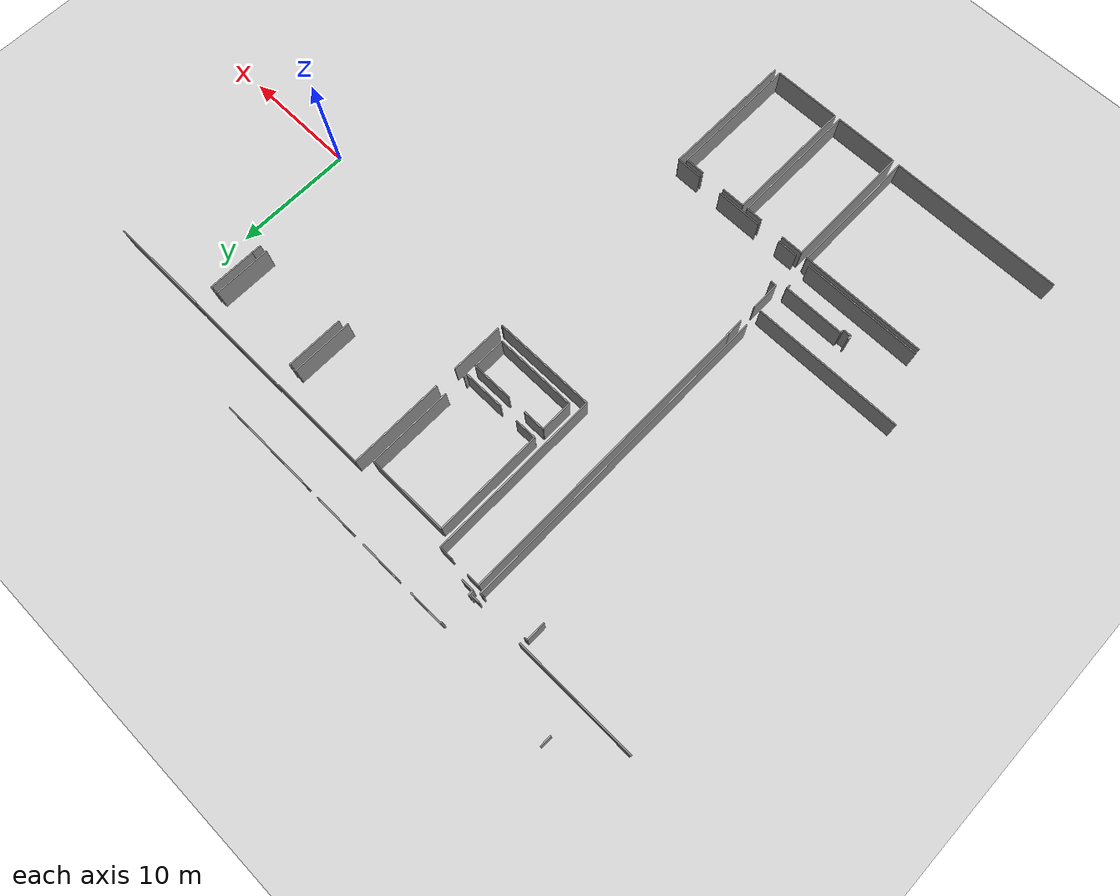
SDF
<sdf version="1.6">
 <world name="default">
  <model name="ground_plane">
   <static>1</static>
   <link name="link">
    <collision name="collision">
     <geometry><plane><normal>0 0 1</normal><size>100 100</size></plane></geometry>
     <surface><friction><ode><mu>100</mu><mu2>50</mu2></ode></friction></surface>
    </collision>
    <visual name="visual">
     <cast_shadows>0</cast_shadows>
     <geometry><plane><normal>0 0 1</normal><size>100 100</size></plane></geometry>
     <material>
      <script><uri>file://media/materials/scripts/gazebo.material</uri><name>Gazebo/Grey</name></script>
     </material>
    </visual>
   </link>
  </model>
  <model name="50010535_PLAN1">
   <static>1</static>
   <link name="Wall_223">
    <collision name="Wall_223_Collision">
     <geometry><box><size>1.60530612504 0.1 2.5</size></box></geometry>
     <pose>0.802653062521 0 1.25 0 0 0</pose>
    </collision>
    <visual name="Wall_223_Visual">
     <pose>0.802653062521 0 1.25 0 0 0</pose>
     <geometry><box><size>1.60530612504 0.1 2.5</size></box></geometry>
     <material>
      <script><uri>file://media/materials/scripts/gazebo.material</uri><name>Gazebo/Grey</name></script>
      <ambient>1 1 1 1</ambient>
     </material>
    </visual>
    <pose>64.3309212658 -14.4340323882 0 0 0 1.57079632679</pose>
   </link>
   <link name="Wall_224">
    <collision name="Wall_224_Collision">
     <geometry><box><size>0.271659371168 0.1 2.5</size></box></geometry>
     <pose>0.135829685584 0 1.25 0 0 0</pose>
    </collision>
    <visual name="Wall_224_Visual">
     <pose>0.135829685584 0 1.25 0 0 0</pose>
     <geometry><box><size>0.271659371168 0.1 2.5</size></box></geometry>
     <material>
      <script><uri>file://media/materials/scripts/gazebo.material</uri><name>Gazebo/Grey</name></script>
      <ambient>1 1 1 1</ambient>
     </material>
    </visual>
    <pose>64.3309212658 -12.8287262632 0 0 0 0.0</pose>
   </link>
   <link name="Wall_225">
    <collision name="Wall_225_Collision">
     <geometry><box><size>0.276233616894 0.1 2.5</size></box></geometry>
     <pose>0.138116808447 0 1.25 0 0 0</pose>
    </collision>
    <visual name="Wall_225_Visual">
     <pose>0.138116808447 0 1.25 0 0 0</pose>
     <geometry><box><size>0.276233616894 0.1 2.5</size></box></geometry>
     <material>
      <script><uri>file://media/materials/scripts/gazebo.material</uri><name>Gazebo/Grey</name></script>
      <ambient>1 1 1 1</ambient>
     </material>
    </visual>
    <pose>68.5725176776 -12.8287262632 0 0 0 0.0</pose>
   </link>
   <link name="Wall_226">
    <collision name="Wall_226_Collision">
     <geometry><box><size>27.6581767819 0.1 2.5</size></box></geometry>
     <pose>13.8290883909 0 1.25 0 0 0</pose>
    </collision>
    <visual name="Wall_226_Visual">
     <pose>13.8290883909 0 1.25 0 0 0</pose>
     <geometry><box><size>27.6581767819 0.1 2.5</size></box></geometry>
     <material>
      <script><uri>file://media/materials/scripts/gazebo.material</uri><name>Gazebo/Grey</name></script>
      <ambient>1 1 1 1</ambient>
     </material>
    </visual>
    <pose>68.8487512944 -12.8287262632 0 0 0 -1.57079632679</pose>
   </link>
   <link name="Wall_227">
    <collision name="Wall_227_Collision">
     <geometry><box><size>12.9268241766 0.1 2.5</size></box></geometry>
     <pose>6.46341208831 0 1.25 0 0 0</pose>
    </collision>
    <visual name="Wall_227_Visual">
     <pose>6.46341208831 0 1.25 0 0 0</pose>
     <geometry><box><size>12.9268241766 0.1 2.5</size></box></geometry>
     <material>
      <script><uri>file://media/materials/scripts/gazebo.material</uri><name>Gazebo/Grey</name></script>
      <ambient>1 1 1 1</ambient>
     </material>
    </visual>
    <pose>68.8487512944 -42.0126681194 0 0 0 -3.14064903509</pose>
   </link>
   <link name="Wall_228">
    <collision name="Wall_228_Collision">
     <geometry><box><size>3.8599010184 0.1 2.5</size></box></geometry>
     <pose>1.9299505092 0 1.25 0 0 0</pose>
    </collision>
    <visual name="Wall_228_Visual">
     <pose>1.9299505092 0 1.25 0 0 0</pose>
     <geometry><box><size>3.8599010184 0.1 2.5</size></box></geometry>
     <material>
      <script><uri>file://media/materials/scripts/gazebo.material</uri><name>Gazebo/Grey</name></script>
      <ambient>1 1 1 1</ambient>
     </material>
    </visual>
    <pose>58.0603927498 -12.32911698 0 0 0 3.14159265359</pose>
   </link>
   <link name="Wall_231">
    <collision name="Wall_231_Collision">
     <geometry><box><size>0.977617961538 0.1 2.5</size></box></geometry>
     <pose>0.488808980769 0 1.25 0 0 0</pose>
    </collision>
    <visual name="Wall_231_Visual">
     <pose>0.488808980769 0 1.25 0 0 0</pose>
     <geometry><box><size>0.977617961538 0.1 2.5</size></box></geometry>
     <material>
      <script><uri>file://media/materials/scripts/gazebo.material</uri><name>Gazebo/Grey</name></script>
      <ambient>1 1 1 1</ambient>
     </material>
    </visual>
    <pose>58.8855358538 -9.56144419103 0 0 0 1.57079632679</pose>
   </link>
   <link name="Wall_238">
    <collision name="Wall_238_Collision">
     <geometry><box><size>0.161115099458 0.1 2.5</size></box></geometry>
     <pose>0.080557549729 0 1.25 0 0 0</pose>
    </collision>
    <visual name="Wall_238_Visual">
     <pose>0.080557549729 0 1.25 0 0 0</pose>
     <geometry><box><size>0.161115099458 0.1 2.5</size></box></geometry>
     <material>
      <script><uri>file://media/materials/scripts/gazebo.material</uri><name>Gazebo/Grey</name></script>
      <ambient>1 1 1 1</ambient>
     </material>
    </visual>
    <pose>69.17453924 -12.1812163682 0 0 0 -1.57079632679</pose>
   </link>
   <link name="Wall_239">
    <collision name="Wall_239_Collision">
     <geometry><box><size>0.674701244576 0.1 2.5</size></box></geometry>
     <pose>0.337350622288 0 1.25 0 0 0</pose>
    </collision>
    <visual name="Wall_239_Visual">
     <pose>0.337350622288 0 1.25 0 0 0</pose>
     <geometry><box><size>0.674701244576 0.1 2.5</size></box></geometry>
     <material>
      <script><uri>file://media/materials/scripts/gazebo.material</uri><name>Gazebo/Grey</name></script>
      <ambient>1 1 1 1</ambient>
     </material>
    </visual>
    <pose>69.17453924 -12.3423314676 0 0 0 3.14159265359</pose>
   </link>
   <link name="Wall_240">
    <collision name="Wall_240_Collision">
     <geometry><box><size>6.52695377845 0.1 2.5</size></box></geometry>
     <pose>3.26347688922 0 1.25 0 0 0</pose>
    </collision>
    <visual name="Wall_240_Visual">
     <pose>3.26347688922 0 1.25 0 0 0</pose>
     <geometry><box><size>6.52695377845 0.1 2.5</size></box></geometry>
     <material>
      <script><uri>file://media/materials/scripts/gazebo.material</uri><name>Gazebo/Grey</name></script>
      <ambient>1 1 1 1</ambient>
     </material>
    </visual>
    <pose>64.5873331512 -12.3423314676 0 0 0 3.1395680496</pose>
   </link>
   <link name="Wall_243">
    <collision name="Wall_243_Collision">
     <geometry><box><size>10.806147278 0.1 2.5</size></box></geometry>
     <pose>5.403073639 0 1.25 0 0 0</pose>
    </collision>
    <visual name="Wall_243_Visual">
     <pose>5.403073639 0 1.25 0 0 0</pose>
     <geometry><box><size>10.806147278 0.1 2.5</size></box></geometry>
     <material>
      <script><uri>file://media/materials/scripts/gazebo.material</uri><name>Gazebo/Grey</name></script>
      <ambient>1 1 1 1</ambient>
     </material>
    </visual>
    <pose>58.3648342154 -47.7858744751 0 0 0 0.0</pose>
   </link>
   <link name="Wall_244">
    <collision name="Wall_244_Collision">
     <geometry><box><size>11.1883509209 0.1 2.5</size></box></geometry>
     <pose>5.59417546044 0 1.25 0 0 0</pose>
    </collision>
    <visual name="Wall_244_Visual">
     <pose>5.59417546044 0 1.25 0 0 0</pose>
     <geometry><box><size>11.1883509209 0.1 2.5</size></box></geometry>
     <material>
      <script><uri>file://media/materials/scripts/gazebo.material</uri><name>Gazebo/Grey</name></script>
      <ambient>1 1 1 1</ambient>
     </material>
    </visual>
    <pose>69.1709814934 -47.7858744751 0 0 0 -1.57079632679</pose>
   </link>
   <link name="Wall_245">
    <collision name="Wall_245_Collision">
     <geometry><box><size>14.9084903568 0.1 2.5</size></box></geometry>
     <pose>7.45424517838 0 1.25 0 0 0</pose>
    </collision>
    <visual name="Wall_245_Visual">
     <pose>7.45424517838 0 1.25 0 0 0</pose>
     <geometry><box><size>14.9084903568 0.1 2.5</size></box></geometry>
     <material>
      <script><uri>file://media/materials/scripts/gazebo.material</uri><name>Gazebo/Grey</name></script>
      <ambient>1 1 1 1</ambient>
     </material>
    </visual>
    <pose>69.1709814934 -58.974225396 0 0 0 -3.14062105195</pose>
   </link>
   <link name="Wall_251">
    <collision name="Wall_251_Collision">
     <geometry><box><size>0.336715310382 0.1 2.5</size></box></geometry>
     <pose>0.168357655191 0 1.25 0 0 0</pose>
    </collision>
    <visual name="Wall_251_Visual">
     <pose>0.168357655191 0 1.25 0 0 0</pose>
     <geometry><box><size>0.336715310382 0.1 2.5</size></box></geometry>
     <material>
      <script><uri>file://media/materials/scripts/gazebo.material</uri><name>Gazebo/Grey</name></script>
      <ambient>1 1 1 1</ambient>
     </material>
    </visual>
    <pose>62.680380933 -44.7996543903 0 0 0 -1.57079632679</pose>
   </link>
   <link name="Wall_252">
    <collision name="Wall_252_Collision">
     <geometry><box><size>0.706212715132 0.1 2.5</size></box></geometry>
     <pose>0.353106357566 0 1.25 0 0 0</pose>
    </collision>
    <visual name="Wall_252_Visual">
     <pose>0.353106357566 0 1.25 0 0 0</pose>
     <geometry><box><size>0.706212715132 0.1 2.5</size></box></geometry>
     <material>
      <script><uri>file://media/materials/scripts/gazebo.material</uri><name>Gazebo/Grey</name></script>
      <ambient>1 1 1 1</ambient>
     </material>
    </visual>
    <pose>62.680380933 -45.1363697007 0 0 0 0.0</pose>
   </link>
   <link name="Wall_253">
    <collision name="Wall_253_Collision">
     <geometry><box><size>0.318164202715 0.1 2.5</size></box></geometry>
     <pose>0.159082101358 0 1.25 0 0 0</pose>
    </collision>
    <visual name="Wall_253_Visual">
     <pose>0.159082101358 0 1.25 0 0 0</pose>
     <geometry><box><size>0.318164202715 0.1 2.5</size></box></geometry>
     <material>
      <script><uri>file://media/materials/scripts/gazebo.material</uri><name>Gazebo/Grey</name></script>
      <ambient>1 1 1 1</ambient>
     </material>
    </visual>
    <pose>63.3865936482 -45.1363697007 0 0 0 1.57079632679</pose>
   </link>
   <link name="Wall_254">
    <collision name="Wall_254_Collision">
     <geometry><box><size>5.26521095532 0.1 2.5</size></box></geometry>
     <pose>2.63260547766 0 1.25 0 0 0</pose>
    </collision>
    <visual name="Wall_254_Visual">
     <pose>2.63260547766 0 1.25 0 0 0</pose>
     <geometry><box><size>5.26521095532 0.1 2.5</size></box></geometry>
     <material>
      <script><uri>file://media/materials/scripts/gazebo.material</uri><name>Gazebo/Grey</name></script>
      <ambient>1 1 1 1</ambient>
     </material>
    </visual>
    <pose>63.3865936482 -44.818205498 0 0 0 0.0</pose>
   </link>
   <link name="Wall_255">
    <collision name="Wall_255_Collision">
     <geometry><box><size>0.357045291386 0.1 2.5</size></box></geometry>
     <pose>0.178522645693 0 1.25 0 0 0</pose>
    </collision>
    <visual name="Wall_255_Visual">
     <pose>0.178522645693 0 1.25 0 0 0</pose>
     <geometry><box><size>0.357045291386 0.1 2.5</size></box></geometry>
     <material>
      <script><uri>file://media/materials/scripts/gazebo.material</uri><name>Gazebo/Grey</name></script>
      <ambient>1 1 1 1</ambient>
     </material>
    </visual>
    <pose>68.6518046035 -44.818205498 0 0 0 -1.57079632679</pose>
   </link>
   <link name="Wall_256">
    <collision name="Wall_256_Collision">
     <geometry><box><size>10.3123828644 0.1 2.5</size></box></geometry>
     <pose>5.15619143218 0 1.25 0 0 0</pose>
    </collision>
    <visual name="Wall_256_Visual">
     <pose>5.15619143218 0 1.25 0 0 0</pose>
     <geometry><box><size>10.3123828644 0.1 2.5</size></box></geometry>
     <material>
      <script><uri>file://media/materials/scripts/gazebo.material</uri><name>Gazebo/Grey</name></script>
      <ambient>1 1 1 1</ambient>
     </material>
    </visual>
    <pose>68.6518046035 -47.3800372293 0 0 0 3.14159265359</pose>
   </link>
   <link name="Wall_261">
    <collision name="Wall_261_Collision">
     <geometry><box><size>11.1609054465 0.1 2.5</size></box></geometry>
     <pose>5.58045272326 0 1.25 0 0 0</pose>
    </collision>
    <visual name="Wall_261_Visual">
     <pose>5.58045272326 0 1.25 0 0 0</pose>
     <geometry><box><size>11.1609054465 0.1 2.5</size></box></geometry>
     <material>
      <script><uri>file://media/materials/scripts/gazebo.material</uri><name>Gazebo/Grey</name></script>
      <ambient>1 1 1 1</ambient>
     </material>
    </visual>
    <pose>69.7641086892 -58.9887105074 0 0 0 1.57079632679</pose>
   </link>
   <link name="Wall_262">
    <collision name="Wall_262_Collision">
     <geometry><box><size>1.91711720869 0.1 2.5</size></box></geometry>
     <pose>0.958558604347 0 1.25 0 0 0</pose>
    </collision>
    <visual name="Wall_262_Visual">
     <pose>0.958558604347 0 1.25 0 0 0</pose>
     <geometry><box><size>1.91711720869 0.1 2.5</size></box></geometry>
     <material>
      <script><uri>file://media/materials/scripts/gazebo.material</uri><name>Gazebo/Grey</name></script>
      <ambient>1 1 1 1</ambient>
     </material>
    </visual>
    <pose>69.7641086892 -47.8278050609 0 0 0 0.0</pose>
   </link>
   <link name="Wall_263">
    <collision name="Wall_263_Collision">
     <geometry><box><size>1.43758378176 0.1 2.5</size></box></geometry>
     <pose>0.718791890879 0 1.25 0 0 0</pose>
    </collision>
    <visual name="Wall_263_Visual">
     <pose>0.718791890879 0 1.25 0 0 0</pose>
     <geometry><box><size>1.43758378176 0.1 2.5</size></box></geometry>
     <material>
      <script><uri>file://media/materials/scripts/gazebo.material</uri><name>Gazebo/Grey</name></script>
      <ambient>1 1 1 1</ambient>
     </material>
    </visual>
    <pose>73.7759763156 -47.8278050609 0 0 0 0.0</pose>
   </link>
   <link name="Wall_264">
    <collision name="Wall_264_Collision">
     <geometry><box><size>11.1464203351 0.1 2.5</size></box></geometry>
     <pose>5.57321016753 0 1.25 0 0 0</pose>
    </collision>
    <visual name="Wall_264_Visual">
     <pose>5.57321016753 0 1.25 0 0 0</pose>
     <geometry><box><size>11.1464203351 0.1 2.5</size></box></geometry>
     <material>
      <script><uri>file://media/materials/scripts/gazebo.material</uri><name>Gazebo/Grey</name></script>
      <ambient>1 1 1 1</ambient>
     </material>
    </visual>
    <pose>75.2135600973 -47.8278050609 0 0 0 -1.57079632679</pose>
   </link>
   <link name="Wall_265">
    <collision name="Wall_265_Collision">
     <geometry><box><size>5.44947065947 0.1 2.5</size></box></geometry>
     <pose>2.72473532974 0 1.25 0 0 0</pose>
    </collision>
    <visual name="Wall_265_Visual">
     <pose>2.72473532974 0 1.25 0 0 0</pose>
     <geometry><box><size>5.44947065947 0.1 2.5</size></box></geometry>
     <material>
      <script><uri>file://media/materials/scripts/gazebo.material</uri><name>Gazebo/Grey</name></script>
      <ambient>1 1 1 1</ambient>
     </material>
    </visual>
    <pose>75.2135600973 -58.974225396 0 0 0 -3.13893457367</pose>
   </link>
   <link name="Wall_266">
    <collision name="Wall_266_Collision">
     <geometry><box><size>11.1865720475 0.1 2.5</size></box></geometry>
     <pose>5.59328602377 0 1.25 0 0 0</pose>
    </collision>
    <visual name="Wall_266_Visual">
     <pose>5.59328602377 0 1.25 0 0 0</pose>
     <geometry><box><size>11.1865720475 0.1 2.5</size></box></geometry>
     <material>
      <script><uri>file://media/materials/scripts/gazebo.material</uri><name>Gazebo/Grey</name></script>
      <ambient>1 1 1 1</ambient>
     </material>
    </visual>
    <pose>75.6608196794 -58.9767666436 0 0 0 1.57079632679</pose>
   </link>
   <link name="Wall_267">
    <collision name="Wall_267_Collision">
     <geometry><box><size>2.02003773753 0.1 2.5</size></box></geometry>
     <pose>1.01001886876 0 1.25 0 0 0</pose>
    </collision>
    <visual name="Wall_267_Visual">
     <pose>1.01001886876 0 1.25 0 0 0</pose>
     <geometry><box><size>2.02003773753 0.1 2.5</size></box></geometry>
     <material>
      <script><uri>file://media/materials/scripts/gazebo.material</uri><name>Gazebo/Grey</name></script>
      <ambient>1 1 1 1</ambient>
     </material>
    </visual>
    <pose>75.6608196794 -47.790194596 0 0 0 0.0</pose>
   </link>
   <link name="Wall_268">
    <collision name="Wall_268_Collision">
     <geometry><box><size>1.66451719472 0.1 2.5</size></box></geometry>
     <pose>0.832258597358 0 1.25 0 0 0</pose>
    </collision>
    <visual name="Wall_268_Visual">
     <pose>0.832258597358 0 1.25 0 0 0</pose>
     <geometry><box><size>1.66451719472 0.1 2.5</size></box></geometry>
     <material>
      <script><uri>file://media/materials/scripts/gazebo.material</uri><name>Gazebo/Grey</name></script>
      <ambient>1 1 1 1</ambient>
     </material>
    </visual>
    <pose>79.8101688024 -47.790194596 0 0 0 0.0</pose>
   </link>
   <link name="Wall_269">
    <collision name="Wall_269_Collision">
     <geometry><box><size>11.1840307999 0.1 2.5</size></box></geometry>
     <pose>5.59201539996 0 1.25 0 0 0</pose>
    </collision>
    <visual name="Wall_269_Visual">
     <pose>5.59201539996 0 1.25 0 0 0</pose>
     <geometry><box><size>11.1840307999 0.1 2.5</size></box></geometry>
     <material>
      <script><uri>file://media/materials/scripts/gazebo.material</uri><name>Gazebo/Grey</name></script>
      <ambient>1 1 1 1</ambient>
     </material>
    </visual>
    <pose>81.4746859971 -47.790194596 0 0 0 -1.57079632679</pose>
   </link>
   <link name="Wall_270">
    <collision name="Wall_270_Collision">
     <geometry><box><size>5.81386687306 0.1 2.5</size></box></geometry>
     <pose>2.90693343653 0 1.25 0 0 0</pose>
    </collision>
    <visual name="Wall_270_Visual">
     <pose>2.90693343653 0 1.25 0 0 0</pose>
     <geometry><box><size>5.81386687306 0.1 2.5</size></box></geometry>
     <material>
      <script><uri>file://media/materials/scripts/gazebo.material</uri><name>Gazebo/Grey</name></script>
      <ambient>1 1 1 1</ambient>
     </material>
    </visual>
    <pose>81.4746859971 -58.974225396 0 0 0 -3.14115555247</pose>
   </link>
   <link name="Wall_271">
    <collision name="Wall_271_Collision">
     <geometry><box><size>11.6007954105 0.1 2.5</size></box></geometry>
     <pose>5.80039770525 0 1.25 0 0 0</pose>
    </collision>
    <visual name="Wall_271_Visual">
     <pose>5.80039770525 0 1.25 0 0 0</pose>
     <geometry><box><size>11.6007954105 0.1 2.5</size></box></geometry>
     <material>
      <script><uri>file://media/materials/scripts/gazebo.material</uri><name>Gazebo/Grey</name></script>
      <ambient>1 1 1 1</ambient>
     </material>
    </visual>
    <pose>81.9463415564 -58.974225396 0 0 0 1.57079632679</pose>
   </link>
   <link name="Wall_272">
    <collision name="Wall_272_Collision">
     <geometry><box><size>2.18369408461 0.1 2.5</size></box></geometry>
     <pose>1.09184704231 0 1.25 0 0 0</pose>
    </collision>
    <visual name="Wall_272_Visual">
     <pose>1.09184704231 0 1.25 0 0 0</pose>
     <geometry><box><size>2.18369408461 0.1 2.5</size></box></geometry>
     <material>
      <script><uri>file://media/materials/scripts/gazebo.material</uri><name>Gazebo/Grey</name></script>
      <ambient>1 1 1 1</ambient>
     </material>
    </visual>
    <pose>81.9463415564 -47.3734299855 0 0 0 3.14159265359</pose>
   </link>
   <link name="Wall_273">
    <collision name="Wall_273_Collision">
     <geometry><box><size>3.91402959283 0.1 2.5</size></box></geometry>
     <pose>1.95701479641 0 1.25 0 0 0</pose>
    </collision>
    <visual name="Wall_273_Visual">
     <pose>1.95701479641 0 1.25 0 0 0</pose>
     <geometry><box><size>3.91402959283 0.1 2.5</size></box></geometry>
     <material>
      <script><uri>file://media/materials/scripts/gazebo.material</uri><name>Gazebo/Grey</name></script>
      <ambient>1 1 1 1</ambient>
     </material>
    </visual>
    <pose>77.6394350807 -47.3734299855 0 0 0 3.14159265359</pose>
   </link>
   <link name="Wall_274">
    <collision name="Wall_274_Collision">
     <geometry><box><size>1.73973812443 0.1 2.5</size></box></geometry>
     <pose>0.869869062216 0 1.25 0 0 0</pose>
    </collision>
    <visual name="Wall_274_Visual">
     <pose>0.869869062216 0 1.25 0 0 0</pose>
     <geometry><box><size>1.73973812443 0.1 2.5</size></box></geometry>
     <material>
      <script><uri>file://media/materials/scripts/gazebo.material</uri><name>Gazebo/Grey</name></script>
      <ambient>1 1 1 1</ambient>
     </material>
    </visual>
    <pose>71.6377705635 -47.3734299855 0 0 0 3.14159265359</pose>
   </link>
   <link name="Wall_295">
    <collision name="Wall_295_Collision">
     <geometry><box><size>2.69651785544 0.1 2.5</size></box></geometry>
     <pose>1.34825892772 0 1.25 0 0 0</pose>
    </collision>
    <visual name="Wall_295_Visual">
     <pose>1.34825892772 0 1.25 0 0 0</pose>
     <geometry><box><size>2.69651785544 0.1 2.5</size></box></geometry>
     <material>
      <script><uri>file://media/materials/scripts/gazebo.material</uri><name>Gazebo/Grey</name></script>
      <ambient>1 1 1 1</ambient>
     </material>
    </visual>
    <pose>74.0288304543 -26.8571755303 0 0 0 1.57079632679</pose>
   </link>
   <link name="Wall_296">
    <collision name="Wall_296_Collision">
     <geometry><box><size>1.89297535625 0.1 2.5</size></box></geometry>
     <pose>0.946487678126 0 1.25 0 0 0</pose>
    </collision>
    <visual name="Wall_296_Visual">
     <pose>0.946487678126 0 1.25 0 0 0</pose>
     <geometry><box><size>1.89297535625 0.1 2.5</size></box></geometry>
     <material>
      <script><uri>file://media/materials/scripts/gazebo.material</uri><name>Gazebo/Grey</name></script>
      <ambient>1 1 1 1</ambient>
     </material>
    </visual>
    <pose>74.0288304543 -24.1606576749 0 0 0 0.0</pose>
   </link>
   <link name="Wall_297">
    <collision name="Wall_297_Collision">
     <geometry><box><size>3.48709999174 0.1 2.5</size></box></geometry>
     <pose>1.74354999587 0 1.25 0 0 0</pose>
    </collision>
    <visual name="Wall_297_Visual">
     <pose>1.74354999587 0 1.25 0 0 0</pose>
     <geometry><box><size>3.48709999174 0.1 2.5</size></box></geometry>
     <material>
      <script><uri>file://media/materials/scripts/gazebo.material</uri><name>Gazebo/Grey</name></script>
      <ambient>1 1 1 1</ambient>
     </material>
    </visual>
    <pose>77.5408346728 -24.1606576749 0 0 0 0.0</pose>
   </link>
   <link name="Wall_298">
    <collision name="Wall_298_Collision">
     <geometry><box><size>2.71811846026 0.1 2.5</size></box></geometry>
     <pose>1.35905923013 0 1.25 0 0 0</pose>
    </collision>
    <visual name="Wall_298_Visual">
     <pose>1.35905923013 0 1.25 0 0 0</pose>
     <geometry><box><size>2.71811846026 0.1 2.5</size></box></geometry>
     <material>
      <script><uri>file://media/materials/scripts/gazebo.material</uri><name>Gazebo/Grey</name></script>
      <ambient>1 1 1 1</ambient>
     </material>
    </visual>
    <pose>81.0279346645 -24.1606576749 0 0 0 -1.57079632679</pose>
   </link>
   <link name="Wall_299">
    <collision name="Wall_299_Collision">
     <geometry><box><size>6.99913754198 0.1 2.5</size></box></geometry>
     <pose>3.49956877099 0 1.25 0 0 0</pose>
    </collision>
    <visual name="Wall_299_Visual">
     <pose>3.49956877099 0 1.25 0 0 0</pose>
     <geometry><box><size>6.99913754198 0.1 2.5</size></box></geometry>
     <material>
      <script><uri>file://media/materials/scripts/gazebo.material</uri><name>Gazebo/Grey</name></script>
      <ambient>1 1 1 1</ambient>
     </material>
    </visual>
    <pose>81.0279346645 -26.8787761351 0 0 0 3.13850646776</pose>
   </link>
   <link name="Wall_300">
    <collision name="Wall_300_Collision">
     <geometry><box><size>9.22625362922 0.1 2.5</size></box></geometry>
     <pose>4.61312681461 0 1.25 0 0 0</pose>
    </collision>
    <visual name="Wall_300_Visual">
     <pose>4.61312681461 0 1.25 0 0 0</pose>
     <geometry><box><size>9.22625362922 0.1 2.5</size></box></geometry>
     <material>
      <script><uri>file://media/materials/scripts/gazebo.material</uri><name>Gazebo/Grey</name></script>
      <ambient>1 1 1 1</ambient>
     </material>
    </visual>
    <pose>74.0311175772 -23.2877391155 0 0 0 1.57079632679</pose>
   </link>
   <link name="Wall_301">
    <collision name="Wall_301_Collision">
     <geometry><box><size>7.00647382833 0.1 2.5</size></box></geometry>
     <pose>3.50323691416 0 1.25 0 0 0</pose>
    </collision>
    <visual name="Wall_301_Visual">
     <pose>3.50323691416 0 1.25 0 0 0</pose>
     <geometry><box><size>7.00647382833 0.1 2.5</size></box></geometry>
     <material>
      <script><uri>file://media/materials/scripts/gazebo.material</uri><name>Gazebo/Grey</name></script>
      <ambient>1 1 1 1</ambient>
     </material>
    </visual>
    <pose>74.0311175772 -14.0614854863 0 0 0 0.0</pose>
   </link>
   <link name="Wall_302">
    <collision name="Wall_302_Collision">
     <geometry><box><size>7.10354948762 0.1 2.5</size></box></geometry>
     <pose>3.55177474381 0 1.25 0 0 0</pose>
    </collision>
    <visual name="Wall_302_Visual">
     <pose>3.55177474381 0 1.25 0 0 0</pose>
     <geometry><box><size>7.10354948762 0.1 2.5</size></box></geometry>
     <material>
      <script><uri>file://media/materials/scripts/gazebo.material</uri><name>Gazebo/Grey</name></script>
      <ambient>1 1 1 1</ambient>
     </material>
    </visual>
    <pose>81.0375914055 -14.0614854863 0 0 0 -1.57079632679</pose>
   </link>
   <link name="Wall_303">
    <collision name="Wall_303_Collision">
     <geometry><box><size>0.30571208935 0.1 2.5</size></box></geometry>
     <pose>0.152856044675 0 1.25 0 0 0</pose>
    </collision>
    <visual name="Wall_303_Visual">
     <pose>0.152856044675 0 1.25 0 0 0</pose>
     <geometry><box><size>0.30571208935 0.1 2.5</size></box></geometry>
     <material>
      <script><uri>file://media/materials/scripts/gazebo.material</uri><name>Gazebo/Grey</name></script>
      <ambient>1 1 1 1</ambient>
     </material>
    </visual>
    <pose>81.0375914055 -22.9660171661 0 0 0 -1.57079632679</pose>
   </link>
   <link name="Wall_304">
    <collision name="Wall_304_Collision">
     <geometry><box><size>3.54529456237 0.1 2.5</size></box></geometry>
     <pose>1.77264728118 0 1.25 0 0 0</pose>
    </collision>
    <visual name="Wall_304_Visual">
     <pose>1.77264728118 0 1.25 0 0 0</pose>
     <geometry><box><size>3.54529456237 0.1 2.5</size></box></geometry>
     <material>
      <script><uri>file://media/materials/scripts/gazebo.material</uri><name>Gazebo/Grey</name></script>
      <ambient>1 1 1 1</ambient>
     </material>
    </visual>
    <pose>81.0375914055 -23.2717292555 0 0 0 3.14159265359</pose>
   </link>
   <link name="Wall_305">
    <collision name="Wall_305_Collision">
     <geometry><box><size>1.84730227595 0.1 2.5</size></box></geometry>
     <pose>0.923651137976 0 1.25 0 0 0</pose>
    </collision>
    <visual name="Wall_305_Visual">
     <pose>0.923651137976 0 1.25 0 0 0</pose>
     <geometry><box><size>1.84730227595 0.1 2.5</size></box></geometry>
     <material>
      <script><uri>file://media/materials/scripts/gazebo.material</uri><name>Gazebo/Grey</name></script>
      <ambient>1 1 1 1</ambient>
     </material>
    </visual>
    <pose>75.8783504762 -23.2717292555 0 0 0 -3.13292592878</pose>
   </link>
   <link name="Wall_306">
    <collision name="Wall_306_Collision">
     <geometry><box><size>4.47386644473 0.1 2.5</size></box></geometry>
     <pose>2.23693322237 0 1.25 0 0 0</pose>
    </collision>
    <visual name="Wall_306_Visual">
     <pose>2.23693322237 0 1.25 0 0 0</pose>
     <geometry><box><size>4.47386644473 0.1 2.5</size></box></geometry>
     <material>
      <script><uri>file://media/materials/scripts/gazebo.material</uri><name>Gazebo/Grey</name></script>
      <ambient>1 1 1 1</ambient>
     </material>
    </visual>
    <pose>81.9496451783 -27.4180288813 0 0 0 1.57079632679</pose>
   </link>
   <link name="Wall_307">
    <collision name="Wall_307_Collision">
     <geometry><box><size>7.97036905269 0.1 2.5</size></box></geometry>
     <pose>3.98518452634 0 1.25 0 0 0</pose>
    </collision>
    <visual name="Wall_307_Visual">
     <pose>3.98518452634 0 1.25 0 0 0</pose>
     <geometry><box><size>7.97036905269 0.1 2.5</size></box></geometry>
     <material>
      <script><uri>file://media/materials/scripts/gazebo.material</uri><name>Gazebo/Grey</name></script>
      <ambient>1 1 1 1</ambient>
     </material>
    </visual>
    <pose>81.9496451783 -21.1195466414 0 0 0 1.57079632679</pose>
   </link>
   <link name="Wall_308">
    <collision name="Wall_308_Collision">
     <geometry><box><size>8.41025901666 0.1 2.5</size></box></geometry>
     <pose>4.20512950833 0 1.25 0 0 0</pose>
    </collision>
    <visual name="Wall_308_Visual">
     <pose>4.20512950833 0 1.25 0 0 0</pose>
     <geometry><box><size>8.41025901666 0.1 2.5</size></box></geometry>
     <material>
      <script><uri>file://media/materials/scripts/gazebo.material</uri><name>Gazebo/Grey</name></script>
      <ambient>1 1 1 1</ambient>
     </material>
    </visual>
    <pose>81.9496451783 -13.1491775887 0 0 0 0.0</pose>
   </link>
   <link name="Wall_309">
    <collision name="Wall_309_Collision">
     <geometry><box><size>0.109273647897 0.1 2.5</size></box></geometry>
     <pose>0.0546368239487 0 1.25 0 0 0</pose>
    </collision>
    <visual name="Wall_309_Visual">
     <pose>0.0546368239487 0 1.25 0 0 0</pose>
     <geometry><box><size>0.109273647897 0.1 2.5</size></box></geometry>
     <material>
      <script><uri>file://media/materials/scripts/gazebo.material</uri><name>Gazebo/Grey</name></script>
      <ambient>1 1 1 1</ambient>
     </material>
    </visual>
    <pose>90.359904195 -14.7384738537 0 0 0 3.14159265359</pose>
   </link>
   <link name="Wall_310">
    <collision name="Wall_310_Collision">
     <geometry><box><size>5.17957091034 0.1 2.5</size></box></geometry>
     <pose>2.58978545517 0 1.25 0 0 0</pose>
    </collision>
    <visual name="Wall_310_Visual">
     <pose>2.58978545517 0 1.25 0 0 0</pose>
     <geometry><box><size>5.17957091034 0.1 2.5</size></box></geometry>
     <material>
      <script><uri>file://media/materials/scripts/gazebo.material</uri><name>Gazebo/Grey</name></script>
      <ambient>1 1 1 1</ambient>
     </material>
    </visual>
    <pose>90.2506305471 -14.7384738537 0 0 0 -1.57079632679</pose>
   </link>
   <link name="Wall_311">
    <collision name="Wall_311_Collision">
     <geometry><box><size>4.2779362528 0.1 2.5</size></box></geometry>
     <pose>2.1389681264 0 1.25 0 0 0</pose>
    </collision>
    <visual name="Wall_311_Visual">
     <pose>2.1389681264 0 1.25 0 0 0</pose>
     <geometry><box><size>4.2779362528 0.1 2.5</size></box></geometry>
     <material>
      <script><uri>file://media/materials/scripts/gazebo.material</uri><name>Gazebo/Grey</name></script>
      <ambient>1 1 1 1</ambient>
     </material>
    </visual>
    <pose>95.118136249 -13.1235109877 0 0 0 0.0</pose>
   </link>
   <link name="Wall_312">
    <collision name="Wall_312_Collision">
     <geometry><box><size>0.18220745475 0.1 2.5</size></box></geometry>
     <pose>0.091103727375 0 1.25 0 0 0</pose>
    </collision>
    <visual name="Wall_312_Visual">
     <pose>0.091103727375 0 1.25 0 0 0</pose>
     <geometry><box><size>0.18220745475 0.1 2.5</size></box></geometry>
     <material>
      <script><uri>file://media/materials/scripts/gazebo.material</uri><name>Gazebo/Grey</name></script>
      <ambient>1 1 1 1</ambient>
     </material>
    </visual>
    <pose>99.3960725018 -14.7636322052 0 0 0 3.14159265359</pose>
   </link>
   <link name="Wall_313">
    <collision name="Wall_313_Collision">
     <geometry><box><size>4.83955197804 0.1 2.5</size></box></geometry>
     <pose>2.41977598902 0 1.25 0 0 0</pose>
    </collision>
    <visual name="Wall_313_Visual">
     <pose>2.41977598902 0 1.25 0 0 0</pose>
     <geometry><box><size>4.83955197804 0.1 2.5</size></box></geometry>
     <material>
      <script><uri>file://media/materials/scripts/gazebo.material</uri><name>Gazebo/Grey</name></script>
      <ambient>1 1 1 1</ambient>
     </material>
    </visual>
    <pose>99.213865047 -14.7636322052 0 0 0 -1.57079632679</pose>
   </link>
   <link name="Wall_314">
    <collision name="Wall_314_Collision">
     <geometry><box><size>4.84895459426 0.1 2.5</size></box></geometry>
     <pose>2.42447729713 0 1.25 0 0 0</pose>
    </collision>
    <visual name="Wall_314_Visual">
     <pose>2.42447729713 0 1.25 0 0 0</pose>
     <geometry><box><size>4.84895459426 0.1 2.5</size></box></geometry>
     <material>
      <script><uri>file://media/materials/scripts/gazebo.material</uri><name>Gazebo/Grey</name></script>
      <ambient>1 1 1 1</ambient>
     </material>
    </visual>
    <pose>90.9103384307 -19.6031841833 0 0 0 1.57079632679</pose>
   </link>
   <link name="Wall_315">
    <collision name="Wall_315_Collision">
     <geometry><box><size>0.131890751765 0.1 2.5</size></box></geometry>
     <pose>0.0659453758823 0 1.25 0 0 0</pose>
    </collision>
    <visual name="Wall_315_Visual">
     <pose>0.0659453758823 0 1.25 0 0 0</pose>
     <geometry><box><size>0.131890751765 0.1 2.5</size></box></geometry>
     <material>
      <script><uri>file://media/materials/scripts/gazebo.material</uri><name>Gazebo/Grey</name></script>
      <ambient>1 1 1 1</ambient>
     </material>
    </visual>
    <pose>90.9103384307 -14.754229589 0 0 0 3.14159265359</pose>
   </link>
   <link name="Wall_316">
    <collision name="Wall_316_Collision">
     <geometry><box><size>4.33969768478 0.1 2.5</size></box></geometry>
     <pose>2.16984884239 0 1.25 0 0 0</pose>
    </collision>
    <visual name="Wall_316_Visual">
     <pose>2.16984884239 0 1.25 0 0 0</pose>
     <geometry><box><size>4.33969768478 0.1 2.5</size></box></geometry>
     <material>
      <script><uri>file://media/materials/scripts/gazebo.material</uri><name>Gazebo/Grey</name></script>
      <ambient>1 1 1 1</ambient>
     </material>
    </visual>
    <pose>90.7784476789 -13.114616621 0 0 0 -0.00204953744762</pose>
   </link>
   <link name="Wall_317">
    <collision name="Wall_317_Collision">
     <geometry><box><size>4.0085640045 0.1 2.5</size></box></geometry>
     <pose>2.00428200225 0 1.25 0 0 0</pose>
    </collision>
    <visual name="Wall_317_Visual">
     <pose>2.00428200225 0 1.25 0 0 0</pose>
     <geometry><box><size>4.0085640045 0.1 2.5</size></box></geometry>
     <material>
      <script><uri>file://media/materials/scripts/gazebo.material</uri><name>Gazebo/Grey</name></script>
      <ambient>1 1 1 1</ambient>
     </material>
    </visual>
    <pose>99.8974606583 -18.7592358468 0 0 0 1.57079632679</pose>
   </link>
   <link name="Wall_318">
    <collision name="Wall_318_Collision">
     <geometry><box><size>0.148917110856 0.1 2.5</size></box></geometry>
     <pose>0.0744585554278 0 1.25 0 0 0</pose>
    </collision>
    <visual name="Wall_318_Visual">
     <pose>0.0744585554278 0 1.25 0 0 0</pose>
     <geometry><box><size>0.148917110856 0.1 2.5</size></box></geometry>
     <material>
      <script><uri>file://media/materials/scripts/gazebo.material</uri><name>Gazebo/Grey</name></script>
      <ambient>1 1 1 1</ambient>
     </material>
    </visual>
    <pose>99.8974606583 -14.7506718423 0 0 0 3.14159265359</pose>
   </link>
   <link name="Wall_319">
    <collision name="Wall_319_Collision">
     <geometry><box><size>8.66184253159 0.1 2.5</size></box></geometry>
     <pose>4.3309212658 0 1.25 0 0 0</pose>
    </collision>
    <visual name="Wall_319_Visual">
     <pose>4.3309212658 0 1.25 0 0 0</pose>
     <geometry><box><size>8.66184253159 0.1 2.5</size></box></geometry>
     <material>
      <script><uri>file://media/materials/scripts/gazebo.material</uri><name>Gazebo/Grey</name></script>
      <ambient>1 1 1 1</ambient>
     </material>
    </visual>
    <pose>99.7485435475 -13.1283393582 0 0 0 0.0</pose>
   </link>
   <link name="Wall_322">
    <collision name="Wall_322_Collision">
     <geometry><box><size>0.836592651839 0.1 2.5</size></box></geometry>
     <pose>0.418296325919 0 1.25 0 0 0</pose>
    </collision>
    <visual name="Wall_322_Visual">
     <pose>0.418296325919 0 1.25 0 0 0</pose>
     <geometry><box><size>0.836592651839 0.1 2.5</size></box></geometry>
     <material>
      <script><uri>file://media/materials/scripts/gazebo.material</uri><name>Gazebo/Grey</name></script>
      <ambient>1 1 1 1</ambient>
     </material>
    </visual>
    <pose>99.8926322878 -19.5958145652 0 0 0 1.56502482344</pose>
   </link>
   <link name="Wall_403">
    <collision name="Wall_403_Collision">
     <geometry><box><size>25.9148809108 0.1 2.5</size></box></geometry>
     <pose>12.9574404554 0 1.25 0 0 0</pose>
    </collision>
    <visual name="Wall_403_Visual">
     <pose>12.9574404554 0 1.25 0 0 0</pose>
     <geometry><box><size>25.9148809108 0.1 2.5</size></box></geometry>
     <material>
      <script><uri>file://media/materials/scripts/gazebo.material</uri><name>Gazebo/Grey</name></script>
      <ambient>1 1 1 1</ambient>
     </material>
    </visual>
    <pose>69.3524265738 -39.0279727832 0 0 0 1.57079632679</pose>
   </link>
   <link name="Wall_404">
    <collision name="Wall_404_Collision">
     <geometry><box><size>1.07189824845 0.1 2.5</size></box></geometry>
     <pose>0.535949124223 0 1.25 0 0 0</pose>
    </collision>
    <visual name="Wall_404_Visual">
     <pose>0.535949124223 0 1.25 0 0 0</pose>
     <geometry><box><size>1.07189824845 0.1 2.5</size></box></geometry>
     <material>
      <script><uri>file://media/materials/scripts/gazebo.material</uri><name>Gazebo/Grey</name></script>
      <ambient>1 1 1 1</ambient>
     </material>
    </visual>
    <pose>69.3524265738 -13.1130918725 0 0 0 0.0</pose>
   </link>
   <link name="Wall_405">
    <collision name="Wall_405_Collision">
     <geometry><box><size>1.09807309899 0.1 2.5</size></box></geometry>
     <pose>0.549036549494 0 1.25 0 0 0</pose>
    </collision>
    <visual name="Wall_405_Visual">
     <pose>0.549036549494 0 1.25 0 0 0</pose>
     <geometry><box><size>1.09807309899 0.1 2.5</size></box></geometry>
     <material>
      <script><uri>file://media/materials/scripts/gazebo.material</uri><name>Gazebo/Grey</name></script>
      <ambient>1 1 1 1</ambient>
     </material>
    </visual>
    <pose>72.043861934 -13.1130918725 0 0 0 0.0</pose>
   </link>
   <link name="Wall_406">
    <collision name="Wall_406_Collision">
     <geometry><box><size>14.668589544 0.1 2.5</size></box></geometry>
     <pose>7.33429477202 0 1.25 0 0 0</pose>
    </collision>
    <visual name="Wall_406_Visual">
     <pose>7.33429477202 0 1.25 0 0 0</pose>
     <geometry><box><size>14.668589544 0.1 2.5</size></box></geometry>
     <material>
      <script><uri>file://media/materials/scripts/gazebo.material</uri><name>Gazebo/Grey</name></script>
      <ambient>1 1 1 1</ambient>
     </material>
    </visual>
    <pose>73.141935033 -13.1130918725 0 0 0 -1.57079632679</pose>
   </link>
   <link name="Wall_407">
    <collision name="Wall_407_Collision">
     <geometry><box><size>8.74900732515 0.1 2.5</size></box></geometry>
     <pose>4.37450366257 0 1.25 0 0 0</pose>
    </collision>
    <visual name="Wall_407_Visual">
     <pose>4.37450366257 0 1.25 0 0 0</pose>
     <geometry><box><size>8.74900732515 0.1 2.5</size></box></geometry>
     <material>
      <script><uri>file://media/materials/scripts/gazebo.material</uri><name>Gazebo/Grey</name></script>
      <ambient>1 1 1 1</ambient>
     </material>
    </visual>
    <pose>73.141935033 -27.7816814165 0 0 0 0.0</pose>
   </link>
   <link name="Wall_408">
    <collision name="Wall_408_Collision">
     <geometry><box><size>0.0620064420627 0.1 2.5</size></box></geometry>
     <pose>0.0310032210314 0 1.25 0 0 0</pose>
    </collision>
    <visual name="Wall_408_Visual">
     <pose>0.0310032210314 0 1.25 0 0 0</pose>
     <geometry><box><size>0.0620064420627 0.1 2.5</size></box></geometry>
     <material>
      <script><uri>file://media/materials/scripts/gazebo.material</uri><name>Gazebo/Grey</name></script>
      <ambient>1 1 1 1</ambient>
     </material>
    </visual>
    <pose>81.8909423582 -27.7816814165 0 0 0 1.57079632679</pose>
   </link>
   <link name="Wall_450">
    <collision name="Wall_450_Collision">
     <geometry><box><size>0.489952542201 0.1 2.5</size></box></geometry>
     <pose>0.2449762711 0 1.25 0 0 0</pose>
    </collision>
    <visual name="Wall_450_Visual">
     <pose>0.2449762711 0 1.25 0 0 0</pose>
     <geometry><box><size>0.489952542201 0.1 2.5</size></box></geometry>
     <material>
      <script><uri>file://media/materials/scripts/gazebo.material</uri><name>Gazebo/Grey</name></script>
      <ambient>1 1 1 1</ambient>
     </material>
    </visual>
    <pose>69.8726199628 -44.3961042674 0 0 0 3.14159265359</pose>
   </link>
   <link name="Wall_451">
    <collision name="Wall_451_Collision">
     <geometry><box><size>2.44595083956 0.1 2.5</size></box></geometry>
     <pose>1.22297541978 0 1.25 0 0 0</pose>
    </collision>
    <visual name="Wall_451_Visual">
     <pose>1.22297541978 0 1.25 0 0 0</pose>
     <geometry><box><size>2.44595083956 0.1 2.5</size></box></geometry>
     <material>
      <script><uri>file://media/materials/scripts/gazebo.material</uri><name>Gazebo/Grey</name></script>
      <ambient>1 1 1 1</ambient>
     </material>
    </visual>
    <pose>69.3826674206 -44.3961042674 0 0 0 1.57079632679</pose>
   </link>
   <link name="Wall_452">
    <collision name="Wall_452_Collision">
     <geometry><box><size>1.39775924145 0.1 2.5</size></box></geometry>
     <pose>0.698879620723 0 1.25 0 0 0</pose>
    </collision>
    <visual name="Wall_452_Visual">
     <pose>0.698879620723 0 1.25 0 0 0</pose>
     <geometry><box><size>1.39775924145 0.1 2.5</size></box></geometry>
     <material>
      <script><uri>file://media/materials/scripts/gazebo.material</uri><name>Gazebo/Grey</name></script>
      <ambient>1 1 1 1</ambient>
     </material>
    </visual>
    <pose>69.3826674206 -40.4254048525 0 0 0 1.59243324791</pose>
   </link>
   <link name="Wall_612">
    <collision name="Wall_612_Collision">
     <geometry><box><size>0.660978507398 0.1 2.5</size></box></geometry>
     <pose>0.330489253699 0 1.25 0 0 0</pose>
    </collision>
    <visual name="Wall_612_Visual">
     <pose>0.330489253699 0 1.25 0 0 0</pose>
     <geometry><box><size>0.660978507398 0.1 2.5</size></box></geometry>
     <material>
      <script><uri>file://media/materials/scripts/gazebo.material</uri><name>Gazebo/Grey</name></script>
      <ambient>1 1 1 1</ambient>
     </material>
    </visual>
    <pose>70.0174710774 -12.6040799731 0 0 0 3.14159265359</pose>
   </link>
   <link name="Wall_613">
    <collision name="Wall_613_Collision">
     <geometry><box><size>0.431503846814 0.1 2.5</size></box></geometry>
     <pose>0.215751923407 0 1.25 0 0 0</pose>
    </collision>
    <visual name="Wall_613_Visual">
     <pose>0.215751923407 0 1.25 0 0 0</pose>
     <geometry><box><size>0.431503846814 0.1 2.5</size></box></geometry>
     <material>
      <script><uri>file://media/materials/scripts/gazebo.material</uri><name>Gazebo/Grey</name></script>
      <ambient>1 1 1 1</ambient>
     </material>
    </visual>
    <pose>69.35649257 -12.6040799731 0 0 0 1.57079632679</pose>
   </link>
   <link name="Wall_614">
    <collision name="Wall_614_Collision">
     <geometry><box><size>0.138243870828 0.1 2.5</size></box></geometry>
     <pose>0.0691219354142 0 1.25 0 0 0</pose>
    </collision>
    <visual name="Wall_614_Visual">
     <pose>0.0691219354142 0 1.25 0 0 0</pose>
     <geometry><box><size>0.138243870828 0.1 2.5</size></box></geometry>
     <material>
      <script><uri>file://media/materials/scripts/gazebo.material</uri><name>Gazebo/Grey</name></script>
      <ambient>1 1 1 1</ambient>
     </material>
    </visual>
    <pose>69.35649257 -9.68799832278 0 0 0 1.57079632679</pose>
   </link>
   <link name="Wall_615">
    <collision name="Wall_615_Collision">
     <geometry><box><size>2.98215408855 0.1 2.5</size></box></geometry>
     <pose>1.49107704427 0 1.25 0 0 0</pose>
    </collision>
    <visual name="Wall_615_Visual">
     <pose>1.49107704427 0 1.25 0 0 0</pose>
     <geometry><box><size>2.98215408855 0.1 2.5</size></box></geometry>
     <material>
      <script><uri>file://media/materials/scripts/gazebo.material</uri><name>Gazebo/Grey</name></script>
      <ambient>1 1 1 1</ambient>
     </material>
    </visual>
    <pose>69.35649257 -9.54975445195 0 0 0 0.0</pose>
   </link>
   <link name="Wall_616">
    <collision name="Wall_616_Collision">
     <geometry><box><size>3.31226215511 0.1 2.5</size></box></geometry>
     <pose>1.65613107755 0 1.25 0 0 0</pose>
    </collision>
    <visual name="Wall_616_Visual">
     <pose>1.65613107755 0 1.25 0 0 0</pose>
     <geometry><box><size>3.31226215511 0.1 2.5</size></box></geometry>
     <material>
      <script><uri>file://media/materials/scripts/gazebo.material</uri><name>Gazebo/Grey</name></script>
      <ambient>1 1 1 1</ambient>
     </material>
    </visual>
    <pose>73.83010489 -9.54975445195 0 0 0 0.0</pose>
   </link>
   <link name="Wall_617">
    <collision name="Wall_617_Collision">
     <geometry><box><size>3.2980311684 0.1 2.5</size></box></geometry>
     <pose>1.6490155842 0 1.25 0 0 0</pose>
    </collision>
    <visual name="Wall_617_Visual">
     <pose>1.6490155842 0 1.25 0 0 0</pose>
     <geometry><box><size>3.2980311684 0.1 2.5</size></box></geometry>
     <material>
      <script><uri>file://media/materials/scripts/gazebo.material</uri><name>Gazebo/Grey</name></script>
      <ambient>1 1 1 1</ambient>
     </material>
    </visual>
    <pose>78.6450067661 -9.54975445195 0 0 0 0.0</pose>
   </link>
   <link name="Wall_618">
    <collision name="Wall_618_Collision">
     <geometry><box><size>8.14088676836 0.1 2.5</size></box></geometry>
     <pose>4.07044338418 0 1.25 0 0 0</pose>
    </collision>
    <visual name="Wall_618_Visual">
     <pose>4.07044338418 0 1.25 0 0 0</pose>
     <geometry><box><size>8.14088676836 0.1 2.5</size></box></geometry>
     <material>
      <script><uri>file://media/materials/scripts/gazebo.material</uri><name>Gazebo/Grey</name></script>
      <ambient>1 1 1 1</ambient>
     </material>
    </visual>
    <pose>83.4347502907 -9.54975445195 0 0 0 0.0</pose>
   </link>
   <link name="Wall_637">
    <collision name="Wall_637_Collision">
     <geometry><box><size>0.423626284063 0.1 2.5</size></box></geometry>
     <pose>0.211813142032 0 1.25 0 0 0</pose>
    </collision>
    <visual name="Wall_637_Visual">
     <pose>0.211813142032 0 1.25 0 0 0</pose>
     <geometry><box><size>0.423626284063 0.1 2.5</size></box></geometry>
     <material>
      <script><uri>file://media/materials/scripts/gazebo.material</uri><name>Gazebo/Grey</name></script>
      <ambient>1 1 1 1</ambient>
     </material>
    </visual>
    <pose>70.4410970566 -12.6045882226 0 0 0 3.14039289412</pose>
   </link>
   <pose>-102.6 29.5103111122 0 0 0 0</pose>
  </model>
 </world>
</sdf>
